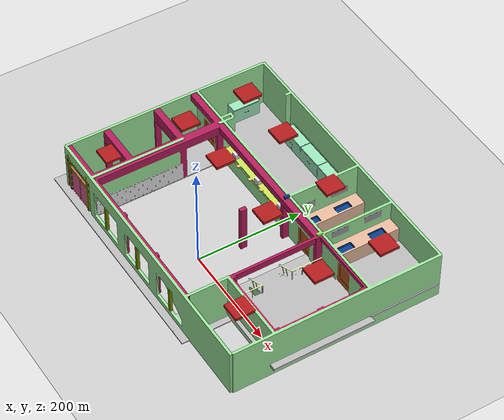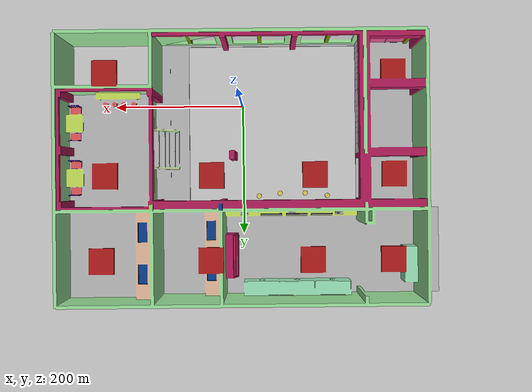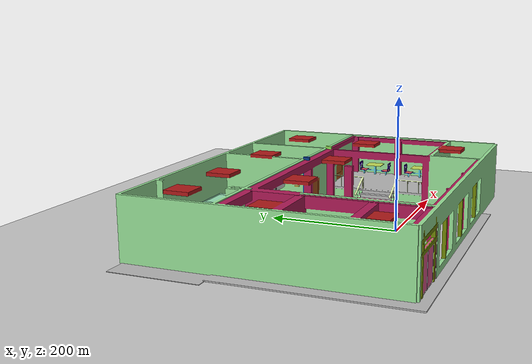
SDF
<?xml version="1.0"?>
    <sdf version="1.4">
      <world name="default">
        <include>
          <uri>model://ground_plane</uri>
        </include>
        <include>
          <uri>model://sun</uri>
        </include>
        <model name="my_mesh">
          <pose>0 0 0  0 0 0</pose>
          <static>true</static>
          <link name="body">
            <visual name="visual">
              <geometry>
                <mesh><uri>file://restaurant.dae</uri></mesh>
              </geometry>
            </visual>
          </link>
        </model>
      </world>
    </sdf>
